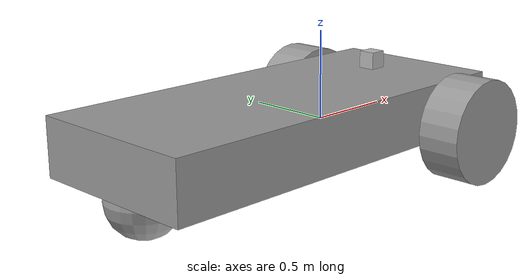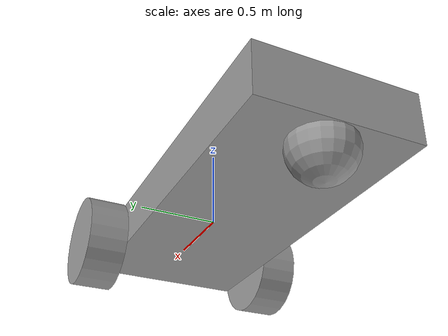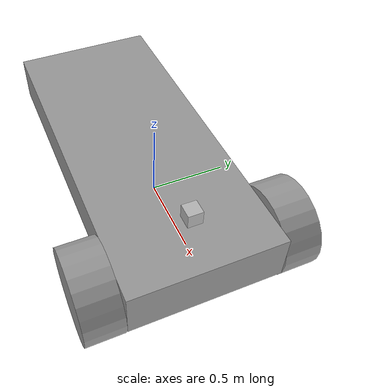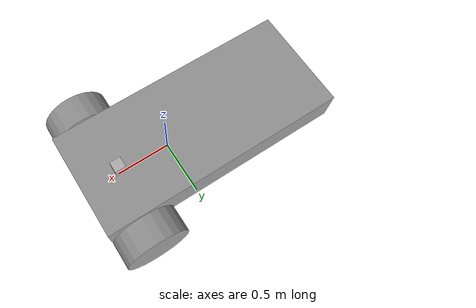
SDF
<?xml version='1.0'?>
<sdf version='1.7'>
  <model name='tutorial_model_editor'>
    <link name='link_2'>
      <inertial>
        <mass>0.750416</mass>
        <inertia>
          <ixx>0.069148</ixx>
          <ixy>0</ixy>
          <ixz>0</ixz>
          <iyy>0.339523</iyy>
          <iyz>0</iyz>
          <izz>0.395444</izz>
        </inertia>
        <pose>0 0 0 0 -0 0</pose>
      </inertial>
      <pose>-0.309702 -0.012461 0.047512 0 -0 0</pose>
      <gravity>1</gravity>
      <self_collide>0</self_collide>
      <kinematic>0</kinematic>
      <enable_wind>0</enable_wind>
      <visual name='visual'>
        <pose>0 0 0 0 -0 0</pose>
        <geometry>
          <box>
            <size>2.30729 1 0.3252</size>
          </box>
        </geometry>
        <material>
          <lighting>1</lighting>
          <script>
            <uri>file://media/materials/scripts/gazebo.material</uri>
            <name>Gazebo/Grey</name>
          </script>
          <shader type='pixel'>
            <normal_map>__default__</normal_map>
          </shader>
          <ambient>0.3 0.3 0.3 1</ambient>
          <diffuse>0.7 0.7 0.7 1</diffuse>
          <specular>0.01 0.01 0.01 1</specular>
          <emissive>0 0 0 1</emissive>
        </material>
        <transparency>0</transparency>
        <cast_shadows>1</cast_shadows>
      </visual>
      <collision name='collision'>
        <laser_retro>0</laser_retro>
        <max_contacts>10</max_contacts>
        <pose>0 0 0 0 -0 0</pose>
        <geometry>
          <box>
            <size>2.30729 1 0.3252</size>
          </box>
        </geometry>
        <surface>
          <friction>
            <ode>
              <mu>1</mu>
              <mu2>1</mu2>
              <fdir1>0 0 0</fdir1>
              <slip1>0</slip1>
              <slip2>0</slip2>
            </ode>
            <torsional>
              <coefficient>1</coefficient>
              <patch_radius>0</patch_radius>
              <surface_radius>0</surface_radius>
              <use_patch_radius>1</use_patch_radius>
              <ode>
                <slip>0</slip>
              </ode>
            </torsional>
          </friction>
          <bounce>
            <restitution_coefficient>0</restitution_coefficient>
            <threshold>1e+06</threshold>
          </bounce>
          <contact>
            <collide_without_contact>0</collide_without_contact>
            <collide_without_contact_bitmask>1</collide_without_contact_bitmask>
            <collide_bitmask>1</collide_bitmask>
            <ode>
              <soft_cfm>0</soft_cfm>
              <soft_erp>0.2</soft_erp>
              <kp>1e+13</kp>
              <kd>1</kd>
              <max_vel>0.01</max_vel>
              <min_depth>0</min_depth>
            </ode>
            <bullet>
              <split_impulse>1</split_impulse>
              <split_impulse_penetration_threshold>-0.01</split_impulse_penetration_threshold>
              <soft_cfm>0</soft_cfm>
              <soft_erp>0.2</soft_erp>
              <kp>1e+13</kp>
              <kd>1</kd>
            </bullet>
          </contact>
        </surface>
      </collision>
    </link>
    <link name='link_3'>
      <inertial>
        <mass>0.0774762</mass>
        <inertia>
          <ixx>0.00299844</ixx>
          <ixy>0</ixy>
          <ixz>0</ixz>
          <iyy>0.00299844</iyy>
          <iyz>0</iyz>
          <izz>0.00577902</izz>
        </inertia>
        <pose>0 0 0 0 -0 0</pose>
      </inertial>
      <pose>0.543947 0.627568 -0.052488 1.5707 -0 0</pose>
      <gravity>1</gravity>
      <self_collide>0</self_collide>
      <kinematic>0</kinematic>
      <enable_wind>0</enable_wind>
      <visual name='visual'>
        <pose>0 0 0 0 -0 0</pose>
        <geometry>
          <cylinder>
            <radius>0.3</radius>
            <length>0.250001</length>
          </cylinder>
        </geometry>
        <material>
          <lighting>1</lighting>
          <script>
            <uri>file://media/materials/scripts/gazebo.material</uri>
            <name>Gazebo/Grey</name>
          </script>
          <shader type='pixel'>
            <normal_map>__default__</normal_map>
          </shader>
          <ambient>0.3 0.3 0.3 1</ambient>
          <diffuse>0.7 0.7 0.7 1</diffuse>
          <specular>0.01 0.01 0.01 1</specular>
          <emissive>0 0 0 1</emissive>
        </material>
        <transparency>0</transparency>
        <cast_shadows>1</cast_shadows>
      </visual>
      <collision name='collision'>
        <laser_retro>0</laser_retro>
        <max_contacts>10</max_contacts>
        <pose>0 0 0 0 -0 0</pose>
        <geometry>
          <cylinder>
            <radius>0.3</radius>
            <length>0.250001</length>
          </cylinder>
        </geometry>
        <surface>
          <friction>
            <ode>
              <mu>1</mu>
              <mu2>1</mu2>
              <fdir1>0 0 0</fdir1>
              <slip1>0</slip1>
              <slip2>0</slip2>
            </ode>
            <torsional>
              <coefficient>1</coefficient>
              <patch_radius>0</patch_radius>
              <surface_radius>0</surface_radius>
              <use_patch_radius>1</use_patch_radius>
              <ode>
                <slip>0</slip>
              </ode>
            </torsional>
          </friction>
          <bounce>
            <restitution_coefficient>0</restitution_coefficient>
            <threshold>1e+06</threshold>
          </bounce>
          <contact>
            <collide_without_contact>0</collide_without_contact>
            <collide_without_contact_bitmask>1</collide_without_contact_bitmask>
            <collide_bitmask>1</collide_bitmask>
            <ode>
              <soft_cfm>0</soft_cfm>
              <soft_erp>0.2</soft_erp>
              <kp>1e+13</kp>
              <kd>1</kd>
              <max_vel>0.01</max_vel>
              <min_depth>0</min_depth>
            </ode>
            <bullet>
              <split_impulse>1</split_impulse>
              <split_impulse_penetration_threshold>-0.01</split_impulse_penetration_threshold>
              <soft_cfm>0</soft_cfm>
              <soft_erp>0.2</soft_erp>
              <kp>1e+13</kp>
              <kd>1</kd>
            </bullet>
          </contact>
        </surface>
      </collision>
    </link>
    <link name='link_3_clone'>
      <inertial>
        <mass>0.0774762</mass>
        <inertia>
          <ixx>0.00299844</ixx>
          <ixy>0</ixy>
          <ixz>0</ixz>
          <iyy>0.00299844</iyy>
          <iyz>0</iyz>
          <izz>0.00577902</izz>
        </inertia>
        <pose>0 0 0 0 -0 0</pose>
      </inertial>
      <pose>0.543947 -0.63749 -0.052488 1.5707 -0 0</pose>
      <gravity>1</gravity>
      <self_collide>0</self_collide>
      <kinematic>0</kinematic>
      <enable_wind>0</enable_wind>
      <visual name='visual'>
        <pose>0 0 0 0 -0 0</pose>
        <geometry>
          <cylinder>
            <radius>0.3</radius>
            <length>0.250001</length>
          </cylinder>
        </geometry>
        <material>
          <lighting>1</lighting>
          <script>
            <uri>file://media/materials/scripts/gazebo.material</uri>
            <name>Gazebo/Grey</name>
          </script>
          <shader type='pixel'>
            <normal_map>__default__</normal_map>
          </shader>
          <ambient>0.3 0.3 0.3 1</ambient>
          <diffuse>0.7 0.7 0.7 1</diffuse>
          <specular>0.01 0.01 0.01 1</specular>
          <emissive>0 0 0 1</emissive>
        </material>
        <transparency>0</transparency>
        <cast_shadows>1</cast_shadows>
      </visual>
      <collision name='collision'>
        <laser_retro>0</laser_retro>
        <max_contacts>10</max_contacts>
        <pose>0 0 0 0 -0 0</pose>
        <geometry>
          <cylinder>
            <radius>0.3</radius>
            <length>0.250001</length>
          </cylinder>
        </geometry>
        <surface>
          <friction>
            <ode>
              <mu>1</mu>
              <mu2>1</mu2>
              <fdir1>0 0 0</fdir1>
              <slip1>0</slip1>
              <slip2>0</slip2>
            </ode>
            <torsional>
              <coefficient>1</coefficient>
              <patch_radius>0</patch_radius>
              <surface_radius>0</surface_radius>
              <use_patch_radius>1</use_patch_radius>
              <ode>
                <slip>0</slip>
              </ode>
            </torsional>
          </friction>
          <bounce>
            <restitution_coefficient>0</restitution_coefficient>
            <threshold>1e+06</threshold>
          </bounce>
          <contact>
            <collide_without_contact>0</collide_without_contact>
            <collide_without_contact_bitmask>1</collide_without_contact_bitmask>
            <collide_bitmask>1</collide_bitmask>
            <ode>
              <soft_cfm>0</soft_cfm>
              <soft_erp>0.2</soft_erp>
              <kp>1e+13</kp>
              <kd>1</kd>
              <max_vel>0.01</max_vel>
              <min_depth>0</min_depth>
            </ode>
            <bullet>
              <split_impulse>1</split_impulse>
              <split_impulse_penetration_threshold>-0.01</split_impulse_penetration_threshold>
              <soft_cfm>0</soft_cfm>
              <soft_erp>0.2</soft_erp>
              <kp>1e+13</kp>
              <kd>1</kd>
            </bullet>
          </contact>
        </surface>
      </collision>
    </link>
    <link name='link_4'>
      <inertial>
        <mass>1</mass>
        <inertia>
          <ixx>0.1</ixx>
          <ixy>0</ixy>
          <ixz>0</ixz>
          <iyy>0.1</iyy>
          <iyz>0</iyz>
          <izz>0.1</izz>
        </inertia>
        <pose>0 0 0 0 -0 0</pose>
      </inertial>
      <pose>-1.26335 -0.012461 -0.152488 0 -0 0</pose>
      <gravity>1</gravity>
      <self_collide>0</self_collide>
      <kinematic>0</kinematic>
      <enable_wind>0</enable_wind>
      <visual name='visual'>
        <pose>0 0 0 0 -0 0</pose>
        <geometry>
          <sphere>
            <radius>0.2</radius>
          </sphere>
        </geometry>
        <material>
          <lighting>1</lighting>
          <script>
            <uri>file://media/materials/scripts/gazebo.material</uri>
            <name>Gazebo/Grey</name>
          </script>
          <shader type='pixel'>
            <normal_map>__default__</normal_map>
          </shader>
          <ambient>0.3 0.3 0.3 1</ambient>
          <diffuse>0.7 0.7 0.7 1</diffuse>
          <specular>0.01 0.01 0.01 1</specular>
          <emissive>0 0 0 1</emissive>
        </material>
        <transparency>0</transparency>
        <cast_shadows>1</cast_shadows>
      </visual>
      <collision name='collision'>
        <laser_retro>0</laser_retro>
        <max_contacts>10</max_contacts>
        <pose>0 0 0 0 -0 0</pose>
        <geometry>
          <sphere>
            <radius>0.2</radius>
          </sphere>
        </geometry>
        <surface>
          <friction>
            <ode>
              <mu>1</mu>
              <mu2>1</mu2>
              <fdir1>0 0 0</fdir1>
              <slip1>0</slip1>
              <slip2>0</slip2>
            </ode>
            <torsional>
              <coefficient>1</coefficient>
              <patch_radius>0</patch_radius>
              <surface_radius>0</surface_radius>
              <use_patch_radius>1</use_patch_radius>
              <ode>
                <slip>0</slip>
              </ode>
            </torsional>
          </friction>
          <bounce>
            <restitution_coefficient>0</restitution_coefficient>
            <threshold>1e+06</threshold>
          </bounce>
          <contact>
            <collide_without_contact>0</collide_without_contact>
            <collide_without_contact_bitmask>1</collide_without_contact_bitmask>
            <collide_bitmask>1</collide_bitmask>
            <ode>
              <soft_cfm>0</soft_cfm>
              <soft_erp>0.2</soft_erp>
              <kp>1e+13</kp>
              <kd>1</kd>
              <max_vel>0.01</max_vel>
              <min_depth>0</min_depth>
            </ode>
            <bullet>
              <split_impulse>1</split_impulse>
              <split_impulse_penetration_threshold>-0.01</split_impulse_penetration_threshold>
              <soft_cfm>0</soft_cfm>
              <soft_erp>0.2</soft_erp>
              <kp>1e+13</kp>
              <kd>1</kd>
            </bullet>
          </contact>
        </surface>
      </collision>
    </link>
    <model name='depth_camera'>
      <link name='link'>
        <pose>0 0 0.05 0 -0 0</pose>
        <inertial>
          <mass>0.1</mass>
          <inertia>
            <ixx>0.000166667</ixx>
            <iyy>0.000166667</iyy>
            <izz>0.000166667</izz>
            <ixy>0</ixy>
            <ixz>0</ixz>
            <iyz>0</iyz>
          </inertia>
        </inertial>
        <collision name='collision'>
          <geometry>
            <box>
              <size>0.1 0.1 0.1</size>
            </box>
          </geometry>
        </collision>
        <visual name='visual'>
          <geometry>
            <box>
              <size>0.1 0.1 0.1</size>
            </box>
          </geometry>
        </visual>
        <sensor name='camera' type='depth'>
          <camera>
            <horizontal_fov>1.047</horizontal_fov>
            <image>
              <width>320</width>
              <height>240</height>
            </image>
            <clip>
              <near>0.1</near>
              <far>100</far>
            </clip>
          </camera>
          <always_on>1</always_on>
          <update_rate>30</update_rate>
          <visualize>1</visualize>
        </sensor>
      </link>
      <pose>0.48516 0.034845 0.209952 0 -0 0</pose>
    </model>
    <joint name='link_2_JOINT_0' type='revolute'>
      <parent>link_2</parent>
      <child>link_3</child>
      <pose>0 0 0 0 -0 0</pose>
      <axis>
        <xyz>0 0 1</xyz>
        <limit>
          <lower>-1.79769e+308</lower>
          <upper>1.79769e+308</upper>
          <effort>-1</effort>
          <velocity>-1</velocity>
        </limit>
        <dynamics>
          <spring_reference>0</spring_reference>
          <spring_stiffness>0</spring_stiffness>
          <damping>0</damping>
        </dynamics>
      </axis>
      <physics>
        <ode>
          <limit>
            <cfm>0</cfm>
            <erp>0.2</erp>
          </limit>
          <suspension>
            <cfm>0</cfm>
            <erp>0.2</erp>
          </suspension>
        </ode>
      </physics>
    </joint>
    <joint name='link_2_JOINT_1' type='revolute'>
      <parent>link_2</parent>
      <child>link_3_clone</child>
      <pose>0 0 0 0 -0 0</pose>
      <axis>
        <xyz>0 0 1</xyz>
        <limit>
          <lower>-1.79769e+308</lower>
          <upper>1.79769e+308</upper>
          <effort>-1</effort>
          <velocity>-1</velocity>
        </limit>
        <dynamics>
          <spring_reference>0</spring_reference>
          <spring_stiffness>0</spring_stiffness>
          <damping>0</damping>
        </dynamics>
      </axis>
      <physics>
        <ode>
          <limit>
            <cfm>0</cfm>
            <erp>0.2</erp>
          </limit>
          <suspension>
            <cfm>0</cfm>
            <erp>0.2</erp>
          </suspension>
        </ode>
      </physics>
    </joint>
    <joint name='link_2_JOINT_2' type='ball'>
      <parent>link_2</parent>
      <child>link_4</child>
      <pose>0 0 0 0 -0 0</pose>
      <physics>
        <ode>
          <limit>
            <cfm>0</cfm>
            <erp>0.2</erp>
          </limit>
          <suspension>
            <cfm>0</cfm>
            <erp>0.2</erp>
          </suspension>
        </ode>
      </physics>
    </joint>
    <joint name='link_2_JOINT_3' type='fixed'>
      <parent>link_2</parent>
      <child>depth_camera::link</child>
      <pose>0 0 0 0 -0 0</pose>
      <physics>
        <ode>
          <limit>
            <cfm>0</cfm>
            <erp>0.2</erp>
          </limit>
          <suspension>
            <cfm>0</cfm>
            <erp>0.2</erp>
          </suspension>
        </ode>
      </physics>
    </joint>
    <static>0</static>
    <allow_auto_disable>1</allow_auto_disable>
    <plugin name='follower' filename='libFollowerPlugin.so'/>
  </model>
</sdf>
